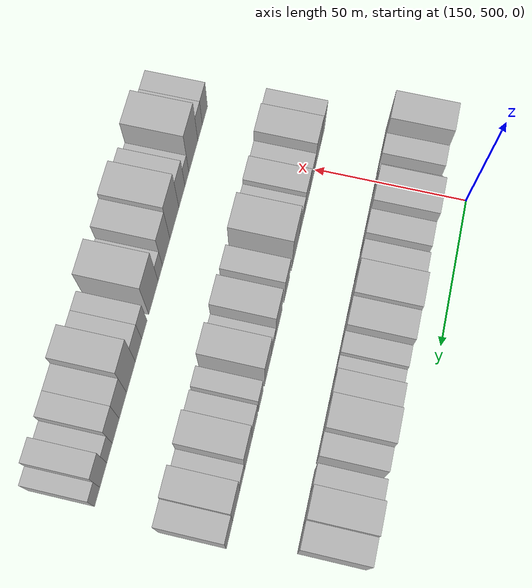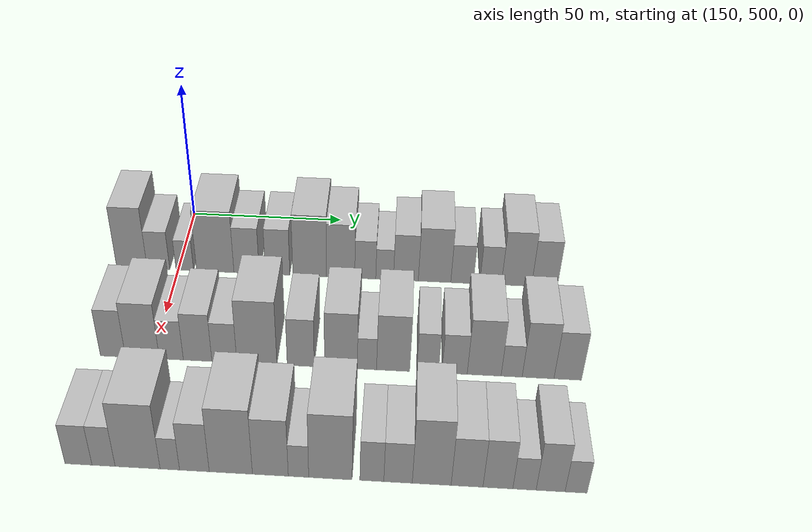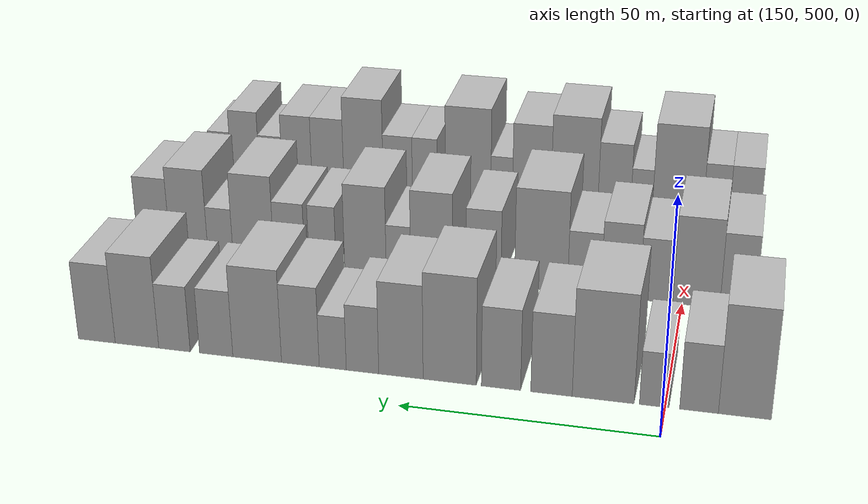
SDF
<sdf version="1.6">
 <world name="default">
  <model name="building_526">
   <static>1</static>
   <pose>170.0000 485.0105 0 0.000000 0.000000 0.000000</pose>
   <link name="link">
    <pose>0 0 12.00 0 0 0</pose>
    <collision name="collision"><geometry><box><size>20.0000 9.9190 24.0000</size></box></geometry></collision>
    <visual name="visual">
     <cast_shadows>0</cast_shadows>
     <geometry><box><size>20.0000 9.9190 24.0000</size></box></geometry>
     <material>
      <script>
       <uri>model://HANNAS_wall/materials/scripts</uri>
       <uri>model://HANNAS_wall/materials/textures</uri>
       <name>vrc/HANNAS_wall</name>
      </script>
     </material>
    </visual>
   </link>
  </model>
  <model name="building_527">
   <static>1</static>
   <pose>170.0000 493.6312 0 0.000000 0.000000 0.000000</pose>
   <link name="link">
    <pose>0 0 7.50 0 0 0</pose>
    <collision name="collision"><geometry><box><size>20.0000 7.3224 15.0000</size></box></geometry></collision>
    <visual name="visual">
     <cast_shadows>0</cast_shadows>
     <geometry><box><size>20.0000 7.3224 15.0000</size></box></geometry>
     <material>
      <script>
       <uri>model://HANNAS_wall/materials/scripts</uri>
       <uri>model://HANNAS_wall/materials/textures</uri>
       <name>vrc/HANNAS_wall</name>
      </script>
     </material>
    </visual>
   </link>
  </model>
  <model name="building_528">
   <static>1</static>
   <pose>170.0000 502.1313 0 0.000000 0.000000 0.000000</pose>
   <link name="link">
    <pose>0 0 6.00 0 0 0</pose>
    <collision name="collision"><geometry><box><size>20.0000 5.6780 12.0000</size></box></geometry></collision>
    <visual name="visual">
     <cast_shadows>0</cast_shadows>
     <geometry><box><size>20.0000 5.6780 12.0000</size></box></geometry>
     <material>
      <script>
       <uri>model://HANNAS_wall/materials/scripts</uri>
       <uri>model://HANNAS_wall/materials/textures</uri>
       <name>vrc/HANNAS_wall</name>
      </script>
     </material>
    </visual>
   </link>
  </model>
  <model name="building_529">
   <static>1</static>
   <pose>170.0000 511.9603 0 0.000000 0.000000 0.000000</pose>
   <link name="link">
    <pose>0 0 12.00 0 0 0</pose>
    <collision name="collision"><geometry><box><size>20.0000 11.9799 24.0000</size></box></geometry></collision>
    <visual name="visual">
     <cast_shadows>0</cast_shadows>
     <geometry><box><size>20.0000 11.9799 24.0000</size></box></geometry>
     <material>
      <script>
       <uri>model://HANNAS_wall/materials/scripts</uri>
       <uri>model://HANNAS_wall/materials/textures</uri>
       <name>vrc/HANNAS_wall</name>
      </script>
     </material>
    </visual>
   </link>
  </model>
  <model name="building_530">
   <static>1</static>
   <pose>170.0000 522.0025 0 0.000000 0.000000 0.000000</pose>
   <link name="link">
    <pose>0 0 9.00 0 0 0</pose>
    <collision name="collision"><geometry><box><size>20.0000 8.1046 18.0000</size></box></geometry></collision>
    <visual name="visual">
     <cast_shadows>0</cast_shadows>
     <geometry><box><size>20.0000 8.1046 18.0000</size></box></geometry>
     <material>
      <script>
       <uri>model://HANNAS_wall/materials/scripts</uri>
       <uri>model://HANNAS_wall/materials/textures</uri>
       <name>vrc/HANNAS_wall</name>
      </script>
     </material>
    </visual>
   </link>
  </model>
  <model name="building_531">
   <static>1</static>
   <pose>170.0000 531.9394 0 0.000000 0.000000 0.000000</pose>
   <link name="link">
    <pose>0 0 9.00 0 0 0</pose>
    <collision name="collision"><geometry><box><size>20.0000 7.7691 18.0000</size></box></geometry></collision>
    <visual name="visual">
     <cast_shadows>0</cast_shadows>
     <geometry><box><size>20.0000 7.7691 18.0000</size></box></geometry>
     <material>
      <script>
       <uri>model://HANNAS_wall/materials/scripts</uri>
       <uri>model://HANNAS_wall/materials/textures</uri>
       <name>vrc/HANNAS_wall</name>
      </script>
     </material>
    </visual>
   </link>
  </model>
  <model name="building_532">
   <static>1</static>
   <pose>170.0000 542.1639 0 0.000000 0.000000 0.000000</pose>
   <link name="link">
    <pose>0 0 12.00 0 0 0</pose>
    <collision name="collision"><geometry><box><size>20.0000 10.6800 24.0000</size></box></geometry></collision>
    <visual name="visual">
     <cast_shadows>0</cast_shadows>
     <geometry><box><size>20.0000 10.6800 24.0000</size></box></geometry>
     <material>
      <script>
       <uri>model://HANNAS_wall/materials/scripts</uri>
       <uri>model://HANNAS_wall/materials/textures</uri>
       <name>vrc/HANNAS_wall</name>
      </script>
     </material>
    </visual>
   </link>
  </model>
  <model name="building_533">
   <static>1</static>
   <pose>170.0000 552.0018 0 0.000000 0.000000 0.000000</pose>
   <link name="link">
    <pose>0 0 10.50 0 0 0</pose>
    <collision name="collision"><geometry><box><size>20.0000 8.9958 21.0000</size></box></geometry></collision>
    <visual name="visual">
     <cast_shadows>0</cast_shadows>
     <geometry><box><size>20.0000 8.9958 21.0000</size></box></geometry>
     <material>
      <script>
       <uri>model://HANNAS_wall/materials/scripts</uri>
       <uri>model://HANNAS_wall/materials/textures</uri>
       <name>vrc/HANNAS_wall</name>
      </script>
     </material>
    </visual>
   </link>
  </model>
  <model name="building_534">
   <static>1</static>
   <pose>170.0000 559.8232 0 0.000000 0.000000 0.000000</pose>
   <link name="link">
    <pose>0 0 7.50 0 0 0</pose>
    <collision name="collision"><geometry><box><size>20.0000 6.6470 15.0000</size></box></geometry></collision>
    <visual name="visual">
     <cast_shadows>0</cast_shadows>
     <geometry><box><size>20.0000 6.6470 15.0000</size></box></geometry>
     <material>
      <script>
       <uri>model://HANNAS_wall/materials/scripts</uri>
       <uri>model://HANNAS_wall/materials/textures</uri>
       <name>vrc/HANNAS_wall</name>
      </script>
     </material>
    </visual>
   </link>
  </model>
  <model name="building_535">
   <static>1</static>
   <pose>170.0000 565.9387 0 0.000000 0.000000 0.000000</pose>
   <link name="link">
    <pose>0 0 6.00 0 0 0</pose>
    <collision name="collision"><geometry><box><size>20.0000 5.5841 12.0000</size></box></geometry></collision>
    <visual name="visual">
     <cast_shadows>0</cast_shadows>
     <geometry><box><size>20.0000 5.5841 12.0000</size></box></geometry>
     <material>
      <script>
       <uri>model://HANNAS_wall/materials/scripts</uri>
       <uri>model://HANNAS_wall/materials/textures</uri>
       <name>vrc/HANNAS_wall</name>
      </script>
     </material>
    </visual>
   </link>
  </model>
  <model name="building_536">
   <static>1</static>
   <pose>170.0000 572.6482 0 0.000000 0.000000 0.000000</pose>
   <link name="link">
    <pose>0 0 9.00 0 0 0</pose>
    <collision name="collision"><geometry><box><size>20.0000 7.8349 18.0000</size></box></geometry></collision>
    <visual name="visual">
     <cast_shadows>0</cast_shadows>
     <geometry><box><size>20.0000 7.8349 18.0000</size></box></geometry>
     <material>
      <script>
       <uri>model://HANNAS_wall/materials/scripts</uri>
       <uri>model://HANNAS_wall/materials/textures</uri>
       <name>vrc/HANNAS_wall</name>
      </script>
     </material>
    </visual>
   </link>
  </model>
  <model name="building_537">
   <static>1</static>
   <pose>170.0000 581.6815 0 0.000000 0.000000 0.000000</pose>
   <link name="link">
    <pose>0 0 10.50 0 0 0</pose>
    <collision name="collision"><geometry><box><size>20.0000 10.2316 21.0000</size></box></geometry></collision>
    <visual name="visual">
     <cast_shadows>0</cast_shadows>
     <geometry><box><size>20.0000 10.2316 21.0000</size></box></geometry>
     <material>
      <script>
       <uri>model://HANNAS_wall/materials/scripts</uri>
       <uri>model://HANNAS_wall/materials/textures</uri>
       <name>vrc/HANNAS_wall</name>
      </script>
     </material>
    </visual>
   </link>
  </model>
  <model name="building_538">
   <static>1</static>
   <pose>170.0000 590.3332 0 0.000000 0.000000 0.000000</pose>
   <link name="link">
    <pose>0 0 7.50 0 0 0</pose>
    <collision name="collision"><geometry><box><size>20.0000 7.0719 15.0000</size></box></geometry></collision>
    <visual name="visual">
     <cast_shadows>0</cast_shadows>
     <geometry><box><size>20.0000 7.0719 15.0000</size></box></geometry>
     <material>
      <script>
       <uri>model://HANNAS_wall/materials/scripts</uri>
       <uri>model://HANNAS_wall/materials/textures</uri>
       <name>vrc/HANNAS_wall</name>
      </script>
     </material>
    </visual>
   </link>
  </model>
  <model name="building_539">
   <static>1</static>
   <pose>170.0000 599.2365 0 0.000000 0.000000 0.000000</pose>
   <link name="link">
    <pose>0 0 7.50 0 0 0</pose>
    <collision name="collision"><geometry><box><size>20.0000 6.7347 15.0000</size></box></geometry></collision>
    <visual name="visual">
     <cast_shadows>0</cast_shadows>
     <geometry><box><size>20.0000 6.7347 15.0000</size></box></geometry>
     <material>
      <script>
       <uri>model://HANNAS_wall/materials/scripts</uri>
       <uri>model://HANNAS_wall/materials/textures</uri>
       <name>vrc/HANNAS_wall</name>
      </script>
     </material>
    </visual>
   </link>
  </model>
  <model name="building_540">
   <static>1</static>
   <pose>170.0000 607.3171 0 0.000000 0.000000 0.000000</pose>
   <link name="link">
    <pose>0 0 10.50 0 0 0</pose>
    <collision name="collision"><geometry><box><size>20.0000 9.4266 21.0000</size></box></geometry></collision>
    <visual name="visual">
     <cast_shadows>0</cast_shadows>
     <geometry><box><size>20.0000 9.4266 21.0000</size></box></geometry>
     <material>
      <script>
       <uri>model://HANNAS_wall/materials/scripts</uri>
       <uri>model://HANNAS_wall/materials/textures</uri>
       <name>vrc/HANNAS_wall</name>
      </script>
     </material>
    </visual>
   </link>
  </model>
  <model name="building_541">
   <static>1</static>
   <pose>170.0000 616.0462 0 0.000000 0.000000 0.000000</pose>
   <link name="link">
    <pose>0 0 9.00 0 0 0</pose>
    <collision name="collision"><geometry><box><size>20.0000 8.0314 18.0000</size></box></geometry></collision>
    <visual name="visual">
     <cast_shadows>0</cast_shadows>
     <geometry><box><size>20.0000 8.0314 18.0000</size></box></geometry>
     <material>
      <script>
       <uri>model://HANNAS_wall/materials/scripts</uri>
       <uri>model://HANNAS_wall/materials/textures</uri>
       <name>vrc/HANNAS_wall</name>
      </script>
     </material>
    </visual>
   </link>
  </model>
  <model name="building_667">
   <static>1</static>
   <pose>210.0000 488.3618 0 0.000000 0.000000 0.000000</pose>
   <link name="link">
    <pose>0 0 9.00 0 0 0</pose>
    <collision name="collision"><geometry><box><size>20.0000 7.4031 18.0000</size></box></geometry></collision>
    <visual name="visual">
     <cast_shadows>0</cast_shadows>
     <geometry><box><size>20.0000 7.4031 18.0000</size></box></geometry>
     <material>
      <script>
       <uri>model://HANNAS_wall/materials/scripts</uri>
       <uri>model://HANNAS_wall/materials/textures</uri>
       <name>vrc/HANNAS_wall</name>
      </script>
     </material>
    </visual>
   </link>
  </model>
  <model name="building_668">
   <static>1</static>
   <pose>210.0000 497.0484 0 0.000000 0.000000 0.000000</pose>
   <link name="link">
    <pose>0 0 10.50 0 0 0</pose>
    <collision name="collision"><geometry><box><size>20.0000 9.9700 21.0000</size></box></geometry></collision>
    <visual name="visual">
     <cast_shadows>0</cast_shadows>
     <geometry><box><size>20.0000 9.9700 21.0000</size></box></geometry>
     <material>
      <script>
       <uri>model://HANNAS_wall/materials/scripts</uri>
       <uri>model://HANNAS_wall/materials/textures</uri>
       <name>vrc/HANNAS_wall</name>
      </script>
     </material>
    </visual>
   </link>
  </model>
  <model name="building_669">
   <static>1</static>
   <pose>210.0000 505.5493 0 0.000000 0.000000 0.000000</pose>
   <link name="link">
    <pose>0 0 7.50 0 0 0</pose>
    <collision name="collision"><geometry><box><size>20.0000 7.0320 15.0000</size></box></geometry></collision>
    <visual name="visual">
     <cast_shadows>0</cast_shadows>
     <geometry><box><size>20.0000 7.0320 15.0000</size></box></geometry>
     <material>
      <script>
       <uri>model://HANNAS_wall/materials/scripts</uri>
       <uri>model://HANNAS_wall/materials/textures</uri>
       <name>vrc/HANNAS_wall</name>
      </script>
     </material>
    </visual>
   </link>
  </model>
  <model name="building_670">
   <static>1</static>
   <pose>210.0000 513.2288 0 0.000000 0.000000 0.000000</pose>
   <link name="link">
    <pose>0 0 9.00 0 0 0</pose>
    <collision name="collision"><geometry><box><size>20.0000 8.3271 18.0000</size></box></geometry></collision>
    <visual name="visual">
     <cast_shadows>0</cast_shadows>
     <geometry><box><size>20.0000 8.3271 18.0000</size></box></geometry>
     <material>
      <script>
       <uri>model://HANNAS_wall/materials/scripts</uri>
       <uri>model://HANNAS_wall/materials/textures</uri>
       <name>vrc/HANNAS_wall</name>
      </script>
     </material>
    </visual>
   </link>
  </model>
  <model name="building_671">
   <static>1</static>
   <pose>210.0000 521.0379 0 0.000000 0.000000 0.000000</pose>
   <link name="link">
    <pose>0 0 7.50 0 0 0</pose>
    <collision name="collision"><geometry><box><size>20.0000 7.2910 15.0000</size></box></geometry></collision>
    <visual name="visual">
     <cast_shadows>0</cast_shadows>
     <geometry><box><size>20.0000 7.2910 15.0000</size></box></geometry>
     <material>
      <script>
       <uri>model://HANNAS_wall/materials/scripts</uri>
       <uri>model://HANNAS_wall/materials/textures</uri>
       <name>vrc/HANNAS_wall</name>
      </script>
     </material>
    </visual>
   </link>
  </model>
  <model name="building_672">
   <static>1</static>
   <pose>210.0000 530.4963 0 0.000000 0.000000 0.000000</pose>
   <link name="link">
    <pose>0 0 12.00 0 0 0</pose>
    <collision name="collision"><geometry><box><size>20.0000 11.6258 24.0000</size></box></geometry></collision>
    <visual name="visual">
     <cast_shadows>0</cast_shadows>
     <geometry><box><size>20.0000 11.6258 24.0000</size></box></geometry>
     <material>
      <script>
       <uri>model://HANNAS_wall/materials/scripts</uri>
       <uri>model://HANNAS_wall/materials/textures</uri>
       <name>vrc/HANNAS_wall</name>
      </script>
     </material>
    </visual>
   </link>
  </model>
  <model name="building_673">
   <static>1</static>
   <pose>210.0000 543.2039 0 0.000000 0.000000 0.000000</pose>
   <link name="link">
    <pose>0 0 9.00 0 0 0</pose>
    <collision name="collision"><geometry><box><size>20.0000 7.7893 18.0000</size></box></geometry></collision>
    <visual name="visual">
     <cast_shadows>0</cast_shadows>
     <geometry><box><size>20.0000 7.7893 18.0000</size></box></geometry>
     <material>
      <script>
       <uri>model://HANNAS_wall/materials/scripts</uri>
       <uri>model://HANNAS_wall/materials/textures</uri>
       <name>vrc/HANNAS_wall</name>
      </script>
     </material>
    </visual>
   </link>
  </model>
  <model name="building_674">
   <static>1</static>
   <pose>210.0000 554.8083 0 0.000000 0.000000 0.000000</pose>
   <link name="link">
    <pose>0 0 10.50 0 0 0</pose>
    <collision name="collision"><geometry><box><size>20.0000 9.4196 21.0000</size></box></geometry></collision>
    <visual name="visual">
     <cast_shadows>0</cast_shadows>
     <geometry><box><size>20.0000 9.4196 21.0000</size></box></geometry>
     <material>
      <script>
       <uri>model://HANNAS_wall/materials/scripts</uri>
       <uri>model://HANNAS_wall/materials/textures</uri>
       <name>vrc/HANNAS_wall</name>
      </script>
     </material>
    </visual>
   </link>
  </model>
  <model name="building_675">
   <static>1</static>
   <pose>210.0000 562.2792 0 0.000000 0.000000 0.000000</pose>
   <link name="link">
    <pose>0 0 6.00 0 0 0</pose>
    <collision name="collision"><geometry><box><size>20.0000 5.5222 12.0000</size></box></geometry></collision>
    <visual name="visual">
     <cast_shadows>0</cast_shadows>
     <geometry><box><size>20.0000 5.5222 12.0000</size></box></geometry>
     <material>
      <script>
       <uri>model://HANNAS_wall/materials/scripts</uri>
       <uri>model://HANNAS_wall/materials/textures</uri>
       <name>vrc/HANNAS_wall</name>
      </script>
     </material>
    </visual>
   </link>
  </model>
  <model name="building_676">
   <static>1</static>
   <pose>210.0000 569.7869 0 0.000000 0.000000 0.000000</pose>
   <link name="link">
    <pose>0 0 10.50 0 0 0</pose>
    <collision name="collision"><geometry><box><size>20.0000 9.4931 21.0000</size></box></geometry></collision>
    <visual name="visual">
     <cast_shadows>0</cast_shadows>
     <geometry><box><size>20.0000 9.4931 21.0000</size></box></geometry>
     <material>
      <script>
       <uri>model://HANNAS_wall/materials/scripts</uri>
       <uri>model://HANNAS_wall/materials/textures</uri>
       <name>vrc/HANNAS_wall</name>
      </script>
     </material>
    </visual>
   </link>
  </model>
  <model name="building_677">
   <static>1</static>
   <pose>210.0000 579.6413 0 0.000000 0.000000 0.000000</pose>
   <link name="link">
    <pose>0 0 7.50 0 0 0</pose>
    <collision name="collision"><geometry><box><size>20.0000 6.2156 15.0000</size></box></geometry></collision>
    <visual name="visual">
     <cast_shadows>0</cast_shadows>
     <geometry><box><size>20.0000 6.2156 15.0000</size></box></geometry>
     <material>
      <script>
       <uri>model://HANNAS_wall/materials/scripts</uri>
       <uri>model://HANNAS_wall/materials/textures</uri>
       <name>vrc/HANNAS_wall</name>
      </script>
     </material>
    </visual>
   </link>
  </model>
  <model name="building_678">
   <static>1</static>
   <pose>210.0000 587.3300 0 0.000000 0.000000 0.000000</pose>
   <link name="link">
    <pose>0 0 7.50 0 0 0</pose>
    <collision name="collision"><geometry><box><size>20.0000 7.1617 15.0000</size></box></geometry></collision>
    <visual name="visual">
     <cast_shadows>0</cast_shadows>
     <geometry><box><size>20.0000 7.1617 15.0000</size></box></geometry>
     <material>
      <script>
       <uri>model://HANNAS_wall/materials/scripts</uri>
       <uri>model://HANNAS_wall/materials/textures</uri>
       <name>vrc/HANNAS_wall</name>
      </script>
     </material>
    </visual>
   </link>
  </model>
  <model name="building_679">
   <static>1</static>
   <pose>210.0000 595.7289 0 0.000000 0.000000 0.000000</pose>
   <link name="link">
    <pose>0 0 10.50 0 0 0</pose>
    <collision name="collision"><geometry><box><size>20.0000 9.6360 21.0000</size></box></geometry></collision>
    <visual name="visual">
     <cast_shadows>0</cast_shadows>
     <geometry><box><size>20.0000 9.6360 21.0000</size></box></geometry>
     <material>
      <script>
       <uri>model://HANNAS_wall/materials/scripts</uri>
       <uri>model://HANNAS_wall/materials/textures</uri>
       <name>vrc/HANNAS_wall</name>
      </script>
     </material>
    </visual>
   </link>
  </model>
  <model name="building_680">
   <static>1</static>
   <pose>210.0000 603.5240 0 0.000000 0.000000 0.000000</pose>
   <link name="link">
    <pose>0 0 6.00 0 0 0</pose>
    <collision name="collision"><geometry><box><size>20.0000 5.9542 12.0000</size></box></geometry></collision>
    <visual name="visual">
     <cast_shadows>0</cast_shadows>
     <geometry><box><size>20.0000 5.9542 12.0000</size></box></geometry>
     <material>
      <script>
       <uri>model://HANNAS_wall/materials/scripts</uri>
       <uri>model://HANNAS_wall/materials/textures</uri>
       <name>vrc/HANNAS_wall</name>
      </script>
     </material>
    </visual>
   </link>
  </model>
  <model name="building_681">
   <static>1</static>
   <pose>210.0000 610.9914 0 0.000000 0.000000 0.000000</pose>
   <link name="link">
    <pose>0 0 10.50 0 0 0</pose>
    <collision name="collision"><geometry><box><size>20.0000 8.9806 21.0000</size></box></geometry></collision>
    <visual name="visual">
     <cast_shadows>0</cast_shadows>
     <geometry><box><size>20.0000 8.9806 21.0000</size></box></geometry>
     <material>
      <script>
       <uri>model://HANNAS_wall/materials/scripts</uri>
       <uri>model://HANNAS_wall/materials/textures</uri>
       <name>vrc/HANNAS_wall</name>
      </script>
     </material>
    </visual>
   </link>
  </model>
  <model name="building_682">
   <static>1</static>
   <pose>210.0000 619.3642 0 0.000000 0.000000 0.000000</pose>
   <link name="link">
    <pose>0 0 9.00 0 0 0</pose>
    <collision name="collision"><geometry><box><size>20.0000 7.7652 18.0000</size></box></geometry></collision>
    <visual name="visual">
     <cast_shadows>0</cast_shadows>
     <geometry><box><size>20.0000 7.7652 18.0000</size></box></geometry>
     <material>
      <script>
       <uri>model://HANNAS_wall/materials/scripts</uri>
       <uri>model://HANNAS_wall/materials/textures</uri>
       <name>vrc/HANNAS_wall</name>
      </script>
     </material>
    </visual>
   </link>
  </model>
  <model name="building_800">
   <static>1</static>
   <pose>250.0000 488.7522 0 0.000000 0.000000 0.000000</pose>
   <link name="link">
    <pose>0 0 7.50 0 0 0</pose>
    <collision name="collision"><geometry><box><size>20.0000 7.1797 15.0000</size></box></geometry></collision>
    <visual name="visual">
     <cast_shadows>0</cast_shadows>
     <geometry><box><size>20.0000 7.1797 15.0000</size></box></geometry>
     <material>
      <script>
       <uri>model://HANNAS_wall/materials/scripts</uri>
       <uri>model://HANNAS_wall/materials/textures</uri>
       <name>vrc/HANNAS_wall</name>
      </script>
     </material>
    </visual>
   </link>
  </model>
  <model name="building_801">
   <static>1</static>
   <pose>250.0000 495.4017 0 0.000000 0.000000 0.000000</pose>
   <link name="link">
    <pose>0 0 7.50 0 0 0</pose>
    <collision name="collision"><geometry><box><size>20.0000 6.1192 15.0000</size></box></geometry></collision>
    <visual name="visual">
     <cast_shadows>0</cast_shadows>
     <geometry><box><size>20.0000 6.1192 15.0000</size></box></geometry>
     <material>
      <script>
       <uri>model://HANNAS_wall/materials/scripts</uri>
       <uri>model://HANNAS_wall/materials/textures</uri>
       <name>vrc/HANNAS_wall</name>
      </script>
     </material>
    </visual>
   </link>
  </model>
  <model name="building_802">
   <static>1</static>
   <pose>250.0000 504.3982 0 0.000000 0.000000 0.000000</pose>
   <link name="link">
    <pose>0 0 12.00 0 0 0</pose>
    <collision name="collision"><geometry><box><size>20.0000 11.8739 24.0000</size></box></geometry></collision>
    <visual name="visual">
     <cast_shadows>0</cast_shadows>
     <geometry><box><size>20.0000 11.8739 24.0000</size></box></geometry>
     <material>
      <script>
       <uri>model://HANNAS_wall/materials/scripts</uri>
       <uri>model://HANNAS_wall/materials/textures</uri>
       <name>vrc/HANNAS_wall</name>
      </script>
     </material>
    </visual>
   </link>
  </model>
  <model name="building_803">
   <static>1</static>
   <pose>250.0000 512.8944 0 0.000000 0.000000 0.000000</pose>
   <link name="link">
    <pose>0 0 6.00 0 0 0</pose>
    <collision name="collision"><geometry><box><size>20.0000 5.1186 12.0000</size></box></geometry></collision>
    <visual name="visual">
     <cast_shadows>0</cast_shadows>
     <geometry><box><size>20.0000 5.1186 12.0000</size></box></geometry>
     <material>
      <script>
       <uri>model://HANNAS_wall/materials/scripts</uri>
       <uri>model://HANNAS_wall/materials/textures</uri>
       <name>vrc/HANNAS_wall</name>
      </script>
     </material>
    </visual>
   </link>
  </model>
  <model name="building_804">
   <static>1</static>
   <pose>250.0000 519.3482 0 0.000000 0.000000 0.000000</pose>
   <link name="link">
    <pose>0 0 9.00 0 0 0</pose>
    <collision name="collision"><geometry><box><size>20.0000 7.7890 18.0000</size></box></geometry></collision>
    <visual name="visual">
     <cast_shadows>0</cast_shadows>
     <geometry><box><size>20.0000 7.7890 18.0000</size></box></geometry>
     <material>
      <script>
       <uri>model://HANNAS_wall/materials/scripts</uri>
       <uri>model://HANNAS_wall/materials/textures</uri>
       <name>vrc/HANNAS_wall</name>
      </script>
     </material>
    </visual>
   </link>
  </model>
  <model name="building_805">
   <static>1</static>
   <pose>250.0000 528.8855 0 0.000000 0.000000 0.000000</pose>
   <link name="link">
    <pose>0 0 12.00 0 0 0</pose>
    <collision name="collision"><geometry><box><size>20.0000 11.2857 24.0000</size></box></geometry></collision>
    <visual name="visual">
     <cast_shadows>0</cast_shadows>
     <geometry><box><size>20.0000 11.2857 24.0000</size></box></geometry>
     <material>
      <script>
       <uri>model://HANNAS_wall/materials/scripts</uri>
       <uri>model://HANNAS_wall/materials/textures</uri>
       <name>vrc/HANNAS_wall</name>
      </script>
     </material>
    </visual>
   </link>
  </model>
  <model name="building_806">
   <static>1</static>
   <pose>250.0000 539.1917 0 0.000000 0.000000 0.000000</pose>
   <link name="link">
    <pose>0 0 10.50 0 0 0</pose>
    <collision name="collision"><geometry><box><size>20.0000 9.3266 21.0000</size></box></geometry></collision>
    <visual name="visual">
     <cast_shadows>0</cast_shadows>
     <geometry><box><size>20.0000 9.3266 21.0000</size></box></geometry>
     <material>
      <script>
       <uri>model://HANNAS_wall/materials/scripts</uri>
       <uri>model://HANNAS_wall/materials/textures</uri>
       <name>vrc/HANNAS_wall</name>
      </script>
     </material>
    </visual>
   </link>
  </model>
  <model name="building_807">
   <static>1</static>
   <pose>250.0000 546.5048 0 0.000000 0.000000 0.000000</pose>
   <link name="link">
    <pose>0 0 6.00 0 0 0</pose>
    <collision name="collision"><geometry><box><size>20.0000 5.2998 12.0000</size></box></geometry></collision>
    <visual name="visual">
     <cast_shadows>0</cast_shadows>
     <geometry><box><size>20.0000 5.2998 12.0000</size></box></geometry>
     <material>
      <script>
       <uri>model://HANNAS_wall/materials/scripts</uri>
       <uri>model://HANNAS_wall/materials/textures</uri>
       <name>vrc/HANNAS_wall</name>
      </script>
     </material>
    </visual>
   </link>
  </model>
  <model name="building_808">
   <static>1</static>
   <pose>250.0000 554.7738 0 0.000000 0.000000 0.000000</pose>
   <link name="link">
    <pose>0 0 12.00 0 0 0</pose>
    <collision name="collision"><geometry><box><size>20.0000 11.2381 24.0000</size></box></geometry></collision>
    <visual name="visual">
     <cast_shadows>0</cast_shadows>
     <geometry><box><size>20.0000 11.2381 24.0000</size></box></geometry>
     <material>
      <script>
       <uri>model://HANNAS_wall/materials/scripts</uri>
       <uri>model://HANNAS_wall/materials/textures</uri>
       <name>vrc/HANNAS_wall</name>
      </script>
     </material>
    </visual>
   </link>
  </model>
  <model name="building_809">
   <static>1</static>
   <pose>250.0000 565.4774 0 0.000000 0.000000 0.000000</pose>
   <link name="link">
    <pose>0 0 7.50 0 0 0</pose>
    <collision name="collision"><geometry><box><size>20.0000 6.1690 15.0000</size></box></geometry></collision>
    <visual name="visual">
     <cast_shadows>0</cast_shadows>
     <geometry><box><size>20.0000 6.1690 15.0000</size></box></geometry>
     <material>
      <script>
       <uri>model://HANNAS_wall/materials/scripts</uri>
       <uri>model://HANNAS_wall/materials/textures</uri>
       <name>vrc/HANNAS_wall</name>
      </script>
     </material>
    </visual>
   </link>
  </model>
  <model name="building_810">
   <static>1</static>
   <pose>250.0000 572.2133 0 0.000000 0.000000 0.000000</pose>
   <link name="link">
    <pose>0 0 7.50 0 0 0</pose>
    <collision name="collision"><geometry><box><size>20.0000 7.3029 15.0000</size></box></geometry></collision>
    <visual name="visual">
     <cast_shadows>0</cast_shadows>
     <geometry><box><size>20.0000 7.3029 15.0000</size></box></geometry>
     <material>
      <script>
       <uri>model://HANNAS_wall/materials/scripts</uri>
       <uri>model://HANNAS_wall/materials/textures</uri>
       <name>vrc/HANNAS_wall</name>
      </script>
     </material>
    </visual>
   </link>
  </model>
  <model name="building_811">
   <static>1</static>
   <pose>250.0000 580.8382 0 0.000000 0.000000 0.000000</pose>
   <link name="link">
    <pose>0 0 12.00 0 0 0</pose>
    <collision name="collision"><geometry><box><size>20.0000 9.9470 24.0000</size></box></geometry></collision>
    <visual name="visual">
     <cast_shadows>0</cast_shadows>
     <geometry><box><size>20.0000 9.9470 24.0000</size></box></geometry>
     <material>
      <script>
       <uri>model://HANNAS_wall/materials/scripts</uri>
       <uri>model://HANNAS_wall/materials/textures</uri>
       <name>vrc/HANNAS_wall</name>
      </script>
     </material>
    </visual>
   </link>
  </model>
  <model name="building_812">
   <static>1</static>
   <pose>250.0000 589.8711 0 0.000000 0.000000 0.000000</pose>
   <link name="link">
    <pose>0 0 9.00 0 0 0</pose>
    <collision name="collision"><geometry><box><size>20.0000 8.1188 18.0000</size></box></geometry></collision>
    <visual name="visual">
     <cast_shadows>0</cast_shadows>
     <geometry><box><size>20.0000 8.1188 18.0000</size></box></geometry>
     <material>
      <script>
       <uri>model://HANNAS_wall/materials/scripts</uri>
       <uri>model://HANNAS_wall/materials/textures</uri>
       <name>vrc/HANNAS_wall</name>
      </script>
     </material>
    </visual>
   </link>
  </model>
  <model name="building_813">
   <static>1</static>
   <pose>250.0000 597.7248 0 0.000000 0.000000 0.000000</pose>
   <link name="link">
    <pose>0 0 9.00 0 0 0</pose>
    <collision name="collision"><geometry><box><size>20.0000 7.5886 18.0000</size></box></geometry></collision>
    <visual name="visual">
     <cast_shadows>0</cast_shadows>
     <geometry><box><size>20.0000 7.5886 18.0000</size></box></geometry>
     <material>
      <script>
       <uri>model://HANNAS_wall/materials/scripts</uri>
       <uri>model://HANNAS_wall/materials/textures</uri>
       <name>vrc/HANNAS_wall</name>
      </script>
     </material>
    </visual>
   </link>
  </model>
  <model name="building_814">
   <static>1</static>
   <pose>250.0000 604.4750 0 0.000000 0.000000 0.000000</pose>
   <link name="link">
    <pose>0 0 6.00 0 0 0</pose>
    <collision name="collision"><geometry><box><size>20.0000 5.9118 12.0000</size></box></geometry></collision>
    <visual name="visual">
     <cast_shadows>0</cast_shadows>
     <geometry><box><size>20.0000 5.9118 12.0000</size></box></geometry>
     <material>
      <script>
       <uri>model://HANNAS_wall/materials/scripts</uri>
       <uri>model://HANNAS_wall/materials/textures</uri>
       <name>vrc/HANNAS_wall</name>
      </script>
     </material>
    </visual>
   </link>
  </model>
  <model name="building_815">
   <static>1</static>
   <pose>250.0000 611.0878 0 0.000000 0.000000 0.000000</pose>
   <link name="link">
    <pose>0 0 9.00 0 0 0</pose>
    <collision name="collision"><geometry><box><size>20.0000 7.3138 18.0000</size></box></geometry></collision>
    <visual name="visual">
     <cast_shadows>0</cast_shadows>
     <geometry><box><size>20.0000 7.3138 18.0000</size></box></geometry>
     <material>
      <script>
       <uri>model://HANNAS_wall/materials/scripts</uri>
       <uri>model://HANNAS_wall/materials/textures</uri>
       <name>vrc/HANNAS_wall</name>
      </script>
     </material>
    </visual>
   </link>
  </model>
  <model name="building_816">
   <static>1</static>
   <pose>250.0000 617.5410 0 0.000000 0.000000 0.000000</pose>
   <link name="link">
    <pose>0 0 6.00 0 0 0</pose>
    <collision name="collision"><geometry><box><size>20.0000 5.5925 12.0000</size></box></geometry></collision>
    <visual name="visual">
     <cast_shadows>0</cast_shadows>
     <geometry><box><size>20.0000 5.5925 12.0000</size></box></geometry>
     <material>
      <script>
       <uri>model://HANNAS_wall/materials/scripts</uri>
       <uri>model://HANNAS_wall/materials/textures</uri>
       <name>vrc/HANNAS_wall</name>
      </script>
     </material>
    </visual>
   </link>
  </model>
 </world>
</sdf>
